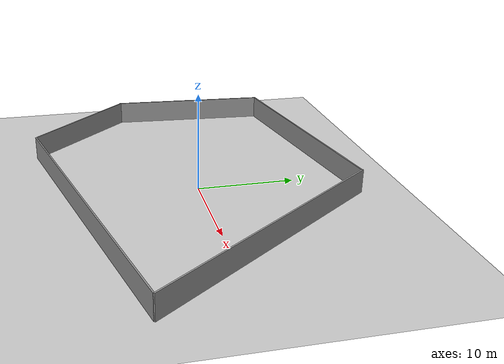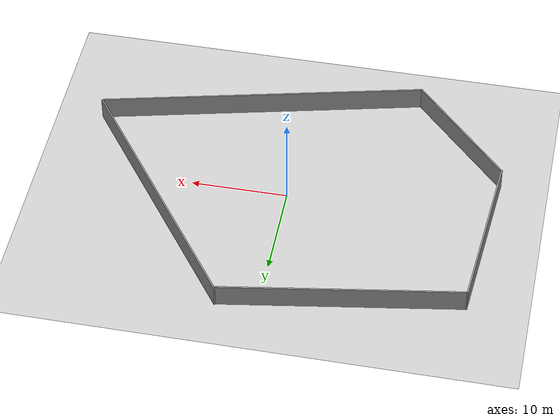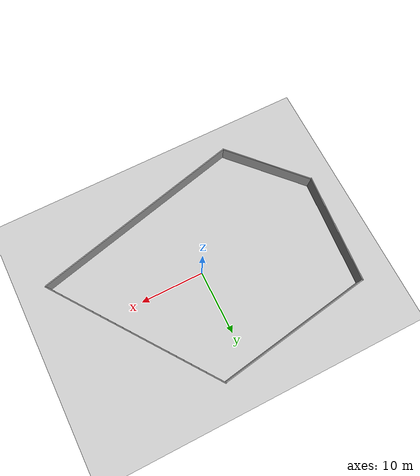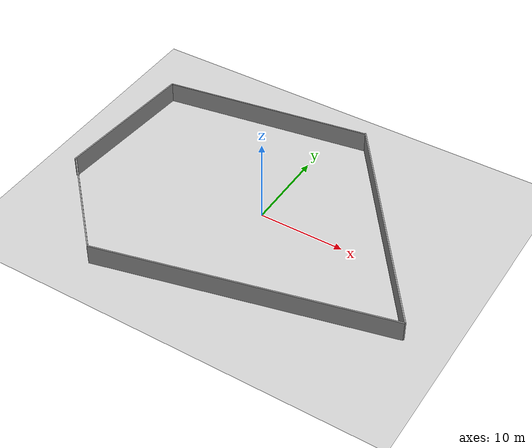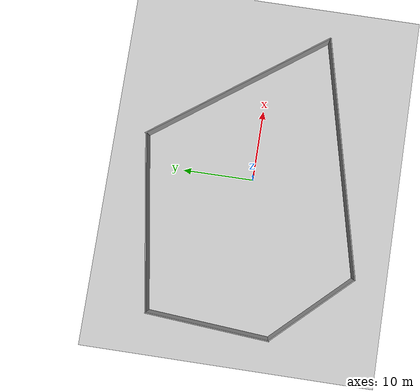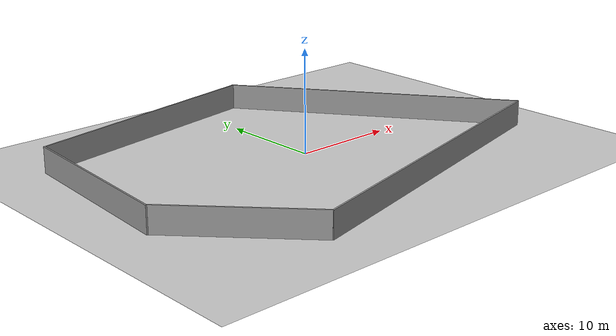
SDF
<sdf version="1.6">
 <world name="default">
  <model name="ground_plane">
   <static>1</static>
   <link name="link">
    <collision name="collision">
     <geometry><plane><normal>0 0 1</normal><size>1000 1000</size></plane></geometry>
     <surface><friction><ode><mu2>0.75</mu2></ode></friction></surface>
    </collision>
    <visual name="visual">
     <cast_shadows>0</cast_shadows>
     <geometry><plane><normal>0 0 1</normal><size>100 100</size></plane></geometry>
     <material>
      <script><uri>file://media/materials/scripts/gazebo.material</uri><name>Gazebo/Grey</name></script>
     </material>
    </visual>
   </link>
  </model>
  <light name="sun" type="directional">
   <pose>0 0 10 0 -0 0</pose>
   <diffuse>0.8 0.8 0.8 1</diffuse>
   <specular>0.2 0.2 0.2 1</specular>
   <attenuation>
    <range>1000</range>
    <constant>0.9</constant>
    <linear>0.01</linear>
    <quadratic>0.001</quadratic>
   </attenuation>
   <direction>-0.5 0.1 -0.9</direction>
  </light>
  <gravity>0 0 -9.8</gravity>
  <magnetic_field>6e-06 2.3e-05 -4.2e-05</magnetic_field>
  <atmosphere type="adiabatic"/>
  <physics name="default_physics" default="0" type="ode">
   <max_step_size>0.001</max_step_size>
   <real_time_factor>1</real_time_factor>
   <real_time_update_rate>1000</real_time_update_rate>
  </physics>
  <scene><ambient>0.4 0.4 0.4 1</ambient><background>0.7 0.7 0.7 1</background><shadows>1</shadows></scene>
  <audio><device>default</device></audio>
  <spherical_coordinates>
   <surface_model>EARTH_WGS84</surface_model>
   <latitude_deg>0</latitude_deg>
   <longitude_deg>0</longitude_deg>
   <elevation>0</elevation>
   <heading_deg>0</heading_deg>
  </spherical_coordinates>
  <model name="simple_room.sdf">
   <link name="Wall_0">
    <collision name="Wall_0_Collision">
     <geometry><box><size>17.3761 0.15 2.5</size></box></geometry>
     <pose>0 0 1.25 0 -0 0</pose>
    </collision>
    <visual name="Wall_0_Visual">
     <pose>0 0 1.25 0 -0 0</pose>
     <geometry><box><size>17.3761 0.15 2.5</size></box></geometry>
     <material>
      <script><uri>file://media/materials/scripts/gazebo.material</uri><name>Gazebo/Grey</name></script>
      <ambient>1 1 1 1</ambient>
     </material>
     <meta><layer>0</layer></meta>
    </visual>
    <pose>-20.8298 3.20984 0 0 -0 1.49676</pose>
   </link>
   <link name="Wall_1">
    <collision name="Wall_1_Collision">
     <geometry><box><size>24.7325 0.15 2.5</size></box></geometry>
     <pose>0 0 1.25 0 -0 0</pose>
    </collision>
    <visual name="Wall_1_Visual">
     <pose>0 0 1.25 0 -0 0</pose>
     <geometry><box><size>24.7325 0.15 2.5</size></box></geometry>
     <material>
      <script><uri>file://media/materials/scripts/gazebo.material</uri><name>Gazebo/Grey</name></script>
      <ambient>1 1 1 1</ambient>
     </material>
     <meta><layer>0</layer></meta>
    </visual>
    <pose>-7.97782 13.7622 0 0 -0 0.160388</pose>
   </link>
   <link name="Wall_2">
    <collision name="Wall_2_Collision">
     <geometry><box><size>29.4298 0.15 2.5</size></box></geometry>
     <pose>0 0 1.25 0 -0 0</pose>
    </collision>
    <visual name="Wall_2_Visual">
     <pose>0 0 1.25 0 -0 0</pose>
     <geometry><box><size>29.4298 0.15 2.5</size></box></geometry>
     <material>
      <script><uri>file://media/materials/scripts/gazebo.material</uri><name>Gazebo/Grey</name></script>
      <ambient>1 1 1 1</ambient>
     </material>
     <meta><layer>0</layer></meta>
    </visual>
    <pose>12.8397 3.96085 0 0 -0 -0.942683</pose>
   </link>
   <link name="Wall_3">
    <collision name="Wall_3_Collision">
     <geometry><box><size>34.064 0.15 2.5</size></box></geometry>
     <pose>0 0 1.25 0 -0 0</pose>
    </collision>
    <visual name="Wall_3_Visual">
     <pose>0 0 1.25 0 -0 0</pose>
     <geometry><box><size>34.064 0.15 2.5</size></box></geometry>
     <material>
      <script><uri>file://media/materials/scripts/gazebo.material</uri><name>Gazebo/Grey</name></script>
      <ambient>1 1 1 1</ambient>
     </material>
     <meta><layer>0</layer></meta>
    </visual>
    <pose>4.86509 -11.8936 0 0 -0 -2.90786</pose>
   </link>
   <link name="Wall_4">
    <collision name="Wall_4_Collision">
     <geometry><box><size>14.3239 0.15 2.5</size></box></geometry>
     <pose>0 0 1.25 0 -0 0</pose>
    </collision>
    <visual name="Wall_4_Visual">
     <pose>0 0 1.25 0 -0 0</pose>
     <geometry><box><size>14.3239 0.15 2.5</size></box></geometry>
     <material>
      <script><uri>file://media/materials/scripts/gazebo.material</uri><name>Gazebo/Grey</name></script>
      <ambient>1 1 1 1</ambient>
     </material>
     <meta><layer>0</layer></meta>
    </visual>
    <pose>-16.5488 -10.5596 0 0 -0 2.32193</pose>
   </link>
   <static>1</static>
  </model>
 </world>
</sdf>
